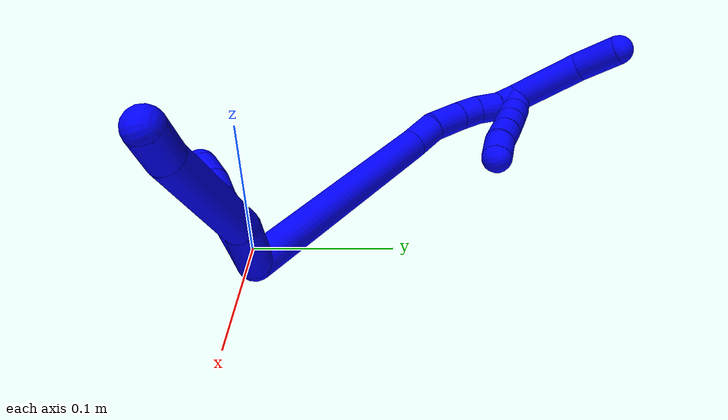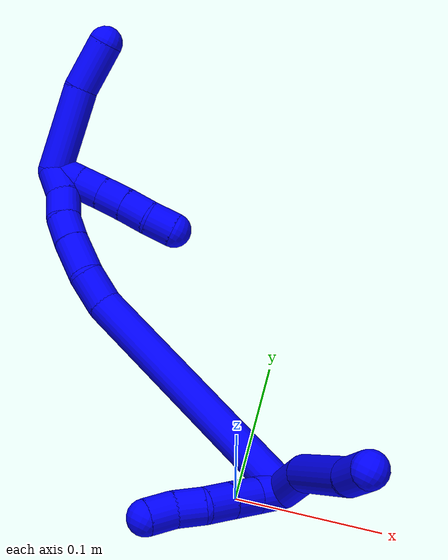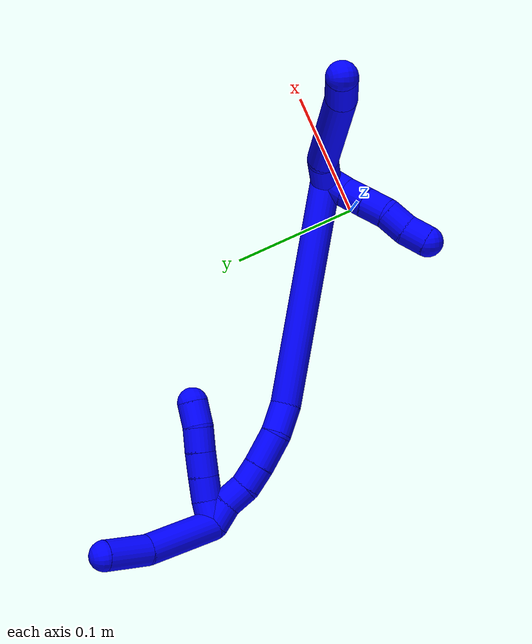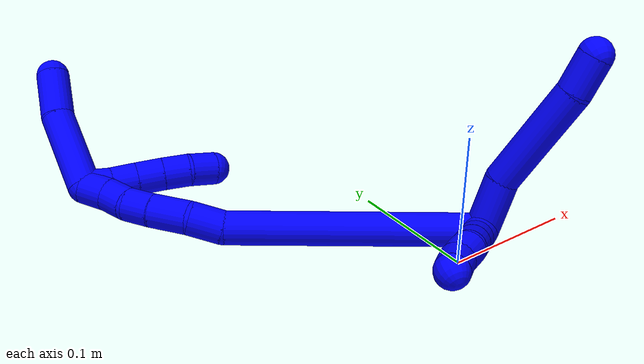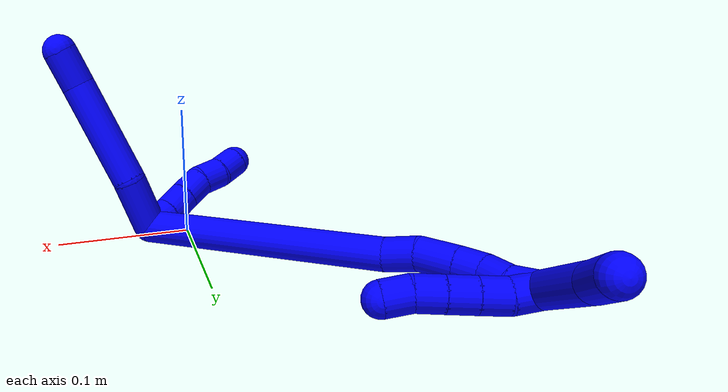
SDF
<sdf version="1.7">
 <world name="default">
  <model name="1">
   <static>0</static>
   <link name="1">
    <collision name="collision-cylinder-e_1_2_8">
     <pose>-0.007142 -0.017736 0.007792 1.15686 -0.353205 -0.231998</pose>
     <geometry><cylinder><radius>0.0125</radius><length>0.041294</length></cylinder></geometry>
     <surface>
      <friction><ode><mu>1.16</mu><mu2>1.16</mu2><slip1>0</slip1><slip2>0</slip2></ode></friction>
      <contact><ode><kp>1e+06</kp><kd>1</kd><max_vel>0</max_vel><min_depth>0.001</min_depth></ode></contact>
     </surface>
    </collision>
    <visual name="visual-cylinder-e_1_2_8">
     <pose>-0.007142 -0.017736 0.007792 1.15686 -0.353205 -0.231998</pose>
     <geometry><cylinder><radius>0.0125</radius><length>0.041294</length></cylinder></geometry>
     <material><ambient>0 0 1 1</ambient></material>
    </visual>
    <collision name="collision-cylinder-e_2_8_9">
     <pose>-0.024998 -0.073951 0.019929 1.45835 -0.269942 -0.241472</pose>
     <geometry><cylinder><radius>0.0125</radius><length>0.080357</length></cylinder></geometry>
     <surface>
      <friction><ode><mu>1.16</mu><mu2>1.16</mu2><slip1>0</slip1><slip2>0</slip2></ode></friction>
      <contact><ode><kp>1e+06</kp><kd>1</kd><max_vel>0</max_vel><min_depth>0.001</min_depth></ode></contact>
     </surface>
    </collision>
    <visual name="visual-cylinder-e_2_8_9">
     <pose>-0.024998 -0.073951 0.019929 1.45835 -0.269942 -0.241472</pose>
     <geometry><cylinder><radius>0.0125</radius><length>0.080357</length></cylinder></geometry>
     <material><ambient>0 0 1 1</ambient></material>
    </visual>
    <collision name="collision-cylinder-e_3_9_6">
     <pose>-0.039656 -0.125426 0.028333 1.26804 -0.281876 -0.207893</pose>
     <geometry><cylinder><radius>0.0125</radius><length>0.028349</length></cylinder></geometry>
     <surface>
      <friction><ode><mu>1.16</mu><mu2>1.16</mu2><slip1>0</slip1><slip2>0</slip2></ode></friction>
      <contact><ode><kp>1e+06</kp><kd>1</kd><max_vel>0</max_vel><min_depth>0.001</min_depth></ode></contact>
     </surface>
    </collision>
    <visual name="visual-cylinder-e_3_9_6">
     <pose>-0.039656 -0.125426 0.028333 1.26804 -0.281876 -0.207893</pose>
     <geometry><cylinder><radius>0.0125</radius><length>0.028349</length></cylinder></geometry>
     <material><ambient>0 0 1 1</ambient></material>
    </visual>
    <collision name="collision-cylinder-e_1_2_10">
     <pose>-0.008199 0.000612 -0.005693 -3.03449 -0.961151 2.93668</pose>
     <geometry><cylinder><radius>0.0125</radius><length>0.02</length></cylinder></geometry>
     <surface>
      <friction><ode><mu>1.16</mu><mu2>1.16</mu2><slip1>0</slip1><slip2>0</slip2></ode></friction>
      <contact><ode><kp>1e+06</kp><kd>1</kd><max_vel>0</max_vel><min_depth>0.001</min_depth></ode></contact>
     </surface>
    </collision>
    <visual name="visual-cylinder-e_1_2_10">
     <pose>-0.008199 0.000612 -0.005693 -3.03449 -0.961151 2.93668</pose>
     <geometry><cylinder><radius>0.0125</radius><length>0.02</length></cylinder></geometry>
     <material><ambient>0 0 1 1</ambient></material>
    </visual>
    <collision name="collision-cylinder-e_2_10_11">
     <pose>-0.024888 0.000453 -0.016612 2.9951 -1.01418 -2.87895</pose>
     <geometry><cylinder><radius>0.0125</radius><length>0.02</length></cylinder></geometry>
     <surface>
      <friction><ode><mu>1.16</mu><mu2>1.16</mu2><slip1>0</slip1><slip2>0</slip2></ode></friction>
      <contact><ode><kp>1e+06</kp><kd>1</kd><max_vel>0</max_vel><min_depth>0.001</min_depth></ode></contact>
     </surface>
    </collision>
    <visual name="visual-cylinder-e_2_10_11">
     <pose>-0.024888 0.000453 -0.016612 2.9951 -1.01418 -2.87895</pose>
     <geometry><cylinder><radius>0.0125</radius><length>0.02</length></cylinder></geometry>
     <material><ambient>0 0 1 1</ambient></material>
    </visual>
    <collision name="collision-cylinder-e_3_11_12">
     <pose>-0.04181 -0.000909 -0.027183 3.03141 -1.00313 -2.94113</pose>
     <geometry><cylinder><radius>0.0125</radius><length>0.02</length></cylinder></geometry>
     <surface>
      <friction><ode><mu>1.16</mu><mu2>1.16</mu2><slip1>0</slip1><slip2>0</slip2></ode></friction>
      <contact><ode><kp>1e+06</kp><kd>1</kd><max_vel>0</max_vel><min_depth>0.001</min_depth></ode></contact>
     </surface>
    </collision>
    <visual name="visual-cylinder-e_3_11_12">
     <pose>-0.04181 -0.000909 -0.027183 3.03141 -1.00313 -2.94113</pose>
     <geometry><cylinder><radius>0.0125</radius><length>0.02</length></cylinder></geometry>
     <material><ambient>0 0 1 1</ambient></material>
    </visual>
    <collision name="collision-cylinder-e_4_12_13">
     <pose>-0.058225 0.001129 -0.037945 -2.68974 -0.924552 2.2772</pose>
     <geometry><cylinder><radius>0.0125</radius><length>0.02</length></cylinder></geometry>
     <surface>
      <friction><ode><mu>1.16</mu><mu2>1.16</mu2><slip1>0</slip1><slip2>0</slip2></ode></friction>
      <contact><ode><kp>1e+06</kp><kd>1</kd><max_vel>0</max_vel><min_depth>0.001</min_depth></ode></contact>
     </surface>
    </collision>
    <visual name="visual-cylinder-e_4_12_13">
     <pose>-0.058225 0.001129 -0.037945 -2.68974 -0.924552 2.2772</pose>
     <geometry><cylinder><radius>0.0125</radius><length>0.02</length></cylinder></geometry>
     <material><ambient>0 0 1 1</ambient></material>
    </visual>
    <collision name="collision-cylinder-e_5_13_5">
     <pose>-0.073946 0.004356 -0.049669 -3.04704 -0.884741 2.94248</pose>
     <geometry><cylinder><radius>0.0125</radius><length>0.02</length></cylinder></geometry>
     <surface>
      <friction><ode><mu>1.16</mu><mu2>1.16</mu2><slip1>0</slip1><slip2>0</slip2></ode></friction>
      <contact><ode><kp>1e+06</kp><kd>1</kd><max_vel>0</max_vel><min_depth>0.001</min_depth></ode></contact>
     </surface>
    </collision>
    <visual name="visual-cylinder-e_5_13_5">
     <pose>-0.073946 0.004356 -0.049669 -3.04704 -0.884741 2.94248</pose>
     <geometry><cylinder><radius>0.0125</radius><length>0.02</length></cylinder></geometry>
     <material><ambient>0 0 1 1</ambient></material>
    </visual>
    <collision name="collision-cylinder-e_1_2_14">
     <pose>-0.058074 0.065795 0.029512 -1.14916 -0.67799 0.448896</pose>
     <geometry><cylinder><radius>0.0125</radius><length>0.185176</length></cylinder></geometry>
     <surface>
      <friction><ode><mu>1.16</mu><mu2>1.16</mu2><slip1>0</slip1><slip2>0</slip2></ode></friction>
      <contact><ode><kp>1e+06</kp><kd>1</kd><max_vel>0</max_vel><min_depth>0.001</min_depth></ode></contact>
     </surface>
    </collision>
    <visual name="visual-cylinder-e_1_2_14">
     <pose>-0.058074 0.065795 0.029512 -1.14916 -0.67799 0.448896</pose>
     <geometry><cylinder><radius>0.0125</radius><length>0.185176</length></cylinder></geometry>
     <material><ambient>0 0 1 1</ambient></material>
    </visual>
    <collision name="collision-cylinder-e_2_14_15">
     <pose>-0.124656 0.138334 0.065567 -0.800376 -0.735828 0.32327</pose>
     <geometry><cylinder><radius>0.0125</radius><length>0.025352</length></cylinder></geometry>
     <surface>
      <friction><ode><mu>1.16</mu><mu2>1.16</mu2><slip1>0</slip1><slip2>0</slip2></ode></friction>
      <contact><ode><kp>1e+06</kp><kd>1</kd><max_vel>0</max_vel><min_depth>0.001</min_depth></ode></contact>
     </surface>
    </collision>
    <visual name="visual-cylinder-e_2_14_15">
     <pose>-0.124656 0.138334 0.065567 -0.800376 -0.735828 0.32327</pose>
     <geometry><cylinder><radius>0.0125</radius><length>0.025352</length></cylinder></geometry>
     <material><ambient>0 0 1 1</ambient></material>
    </visual>
    <collision name="collision-cylinder-e_3_15_16">
     <pose>-0.139741 0.154878 0.080518 -0.861838 -0.471092 0.219784</pose>
     <geometry><cylinder><radius>0.0125</radius><length>0.028982</length></cylinder></geometry>
     <surface>
      <friction><ode><mu>1.16</mu><mu2>1.16</mu2><slip1>0</slip1><slip2>0</slip2></ode></friction>
      <contact><ode><kp>1e+06</kp><kd>1</kd><max_vel>0</max_vel><min_depth>0.001</min_depth></ode></contact>
     </surface>
    </collision>
    <visual name="visual-cylinder-e_3_15_16">
     <pose>-0.139741 0.154878 0.080518 -0.861838 -0.471092 0.219784</pose>
     <geometry><cylinder><radius>0.0125</radius><length>0.028982</length></cylinder></geometry>
     <material><ambient>0 0 1 1</ambient></material>
    </visual>
    <collision name="collision-cylinder-e_4_16_17">
     <pose>-0.150337 0.171282 0.095341 -0.79969 -0.411633 0.176004</pose>
     <geometry><cylinder><radius>0.0125</radius><length>0.020092</length></cylinder></geometry>
     <surface>
      <friction><ode><mu>1.16</mu><mu2>1.16</mu2><slip1>0</slip1><slip2>0</slip2></ode></friction>
      <contact><ode><kp>1e+06</kp><kd>1</kd><max_vel>0</max_vel><min_depth>0.001</min_depth></ode></contact>
     </surface>
    </collision>
    <visual name="visual-cylinder-e_4_16_17">
     <pose>-0.150337 0.171282 0.095341 -0.79969 -0.411633 0.176004</pose>
     <geometry><cylinder><radius>0.0125</radius><length>0.020092</length></cylinder></geometry>
     <material><ambient>0 0 1 1</ambient></material>
    </visual>
    <collision name="collision-cylinder-e_5_17_18">
     <pose>-0.156349 0.183578 0.109922 -0.608968 -0.197564 0.062268</pose>
     <geometry><cylinder><radius>0.0125</radius><length>0.020302</length></cylinder></geometry>
     <surface>
      <friction><ode><mu>1.16</mu><mu2>1.16</mu2><slip1>0</slip1><slip2>0</slip2></ode></friction>
      <contact><ode><kp>1e+06</kp><kd>1</kd><max_vel>0</max_vel><min_depth>0.001</min_depth></ode></contact>
     </surface>
    </collision>
    <visual name="visual-cylinder-e_5_17_18">
     <pose>-0.156349 0.183578 0.109922 -0.608968 -0.197564 0.062268</pose>
     <geometry><cylinder><radius>0.0125</radius><length>0.020302</length></cylinder></geometry>
     <material><ambient>0 0 1 1</ambient></material>
    </visual>
    <collision name="collision-cylinder-e_6_18_1">
     <pose>-0.163104 0.195195 0.124658 -0.733541 -0.493825 0.193054</pose>
     <geometry><cylinder><radius>0.0125</radius><length>0.020095</length></cylinder></geometry>
     <surface>
      <friction><ode><mu>1.16</mu><mu2>1.16</mu2><slip1>0</slip1><slip2>0</slip2></ode></friction>
      <contact><ode><kp>1e+06</kp><kd>1</kd><max_vel>0</max_vel><min_depth>0.001</min_depth></ode></contact>
     </surface>
    </collision>
    <visual name="visual-cylinder-e_6_18_1">
     <pose>-0.163104 0.195195 0.124658 -0.733541 -0.493825 0.193054</pose>
     <geometry><cylinder><radius>0.0125</radius><length>0.020095</length></cylinder></geometry>
     <material><ambient>0 0 1 1</ambient></material>
    </visual>
    <collision name="collision-cylinder-e_1_1_19">
     <pose>-0.15947 0.195695 0.13151 1.51921 0.99667 0.953953</pose>
     <geometry><cylinder><radius>0.0125</radius><length>0.02</length></cylinder></geometry>
     <surface>
      <friction><ode><mu>1.16</mu><mu2>1.16</mu2><slip1>0</slip1><slip2>0</slip2></ode></friction>
      <contact><ode><kp>1e+06</kp><kd>1</kd><max_vel>0</max_vel><min_depth>0.001</min_depth></ode></contact>
     </surface>
    </collision>
    <visual name="visual-cylinder-e_1_1_19">
     <pose>-0.15947 0.195695 0.13151 1.51921 0.99667 0.953953</pose>
     <geometry><cylinder><radius>0.0125</radius><length>0.02</length></cylinder></geometry>
     <material><ambient>0 0 1 1</ambient></material>
    </visual>
    <collision name="collision-cylinder-e_2_19_20">
     <pose>-0.143947 0.183256 0.131721 1.58068 0.79326 0.800327</pose>
     <geometry><cylinder><radius>0.0125</radius><length>0.02</length></cylinder></geometry>
     <surface>
      <friction><ode><mu>1.16</mu><mu2>1.16</mu2><slip1>0</slip1><slip2>0</slip2></ode></friction>
      <contact><ode><kp>1e+06</kp><kd>1</kd><max_vel>0</max_vel><min_depth>0.001</min_depth></ode></contact>
     </surface>
    </collision>
    <visual name="visual-cylinder-e_2_19_20">
     <pose>-0.143947 0.183256 0.131721 1.58068 0.79326 0.800327</pose>
     <geometry><cylinder><radius>0.0125</radius><length>0.02</length></cylinder></geometry>
     <material><ambient>0 0 1 1</ambient></material>
    </visual>
    <collision name="collision-cylinder-e_3_20_21">
     <pose>-0.129729 0.169195 0.131416 1.60427 0.788322 0.812343</pose>
     <geometry><cylinder><radius>0.0125</radius><length>0.02</length></cylinder></geometry>
     <surface>
      <friction><ode><mu>1.16</mu><mu2>1.16</mu2><slip1>0</slip1><slip2>0</slip2></ode></friction>
      <contact><ode><kp>1e+06</kp><kd>1</kd><max_vel>0</max_vel><min_depth>0.001</min_depth></ode></contact>
     </surface>
    </collision>
    <visual name="visual-cylinder-e_3_20_21">
     <pose>-0.129729 0.169195 0.131416 1.60427 0.788322 0.812343</pose>
     <geometry><cylinder><radius>0.0125</radius><length>0.02</length></cylinder></geometry>
     <material><ambient>0 0 1 1</ambient></material>
    </visual>
    <collision name="collision-cylinder-e_4_21_22">
     <pose>-0.115538 0.155135 0.13054 1.66183 0.789419 0.856208</pose>
     <geometry><cylinder><radius>0.0125</radius><length>0.02</length></cylinder></geometry>
     <surface>
      <friction><ode><mu>1.16</mu><mu2>1.16</mu2><slip1>0</slip1><slip2>0</slip2></ode></friction>
      <contact><ode><kp>1e+06</kp><kd>1</kd><max_vel>0</max_vel><min_depth>0.001</min_depth></ode></contact>
     </surface>
    </collision>
    <visual name="visual-cylinder-e_4_21_22">
     <pose>-0.115538 0.155135 0.13054 1.66183 0.789419 0.856208</pose>
     <geometry><cylinder><radius>0.0125</radius><length>0.02</length></cylinder></geometry>
     <material><ambient>0 0 1 1</ambient></material>
    </visual>
    <collision name="collision-cylinder-e_5_22_4">
     <pose>-0.09999 0.142771 0.129934 1.56439 1.00626 1.00085</pose>
     <geometry><cylinder><radius>0.0125</radius><length>0.02</length></cylinder></geometry>
     <surface>
      <friction><ode><mu>1.16</mu><mu2>1.16</mu2><slip1>0</slip1><slip2>0</slip2></ode></friction>
      <contact><ode><kp>1e+06</kp><kd>1</kd><max_vel>0</max_vel><min_depth>0.001</min_depth></ode></contact>
     </surface>
    </collision>
    <visual name="visual-cylinder-e_5_22_4">
     <pose>-0.09999 0.142771 0.129934 1.56439 1.00626 1.00085</pose>
     <geometry><cylinder><radius>0.0125</radius><length>0.02</length></cylinder></geometry>
     <material><ambient>0 0 1 1</ambient></material>
    </visual>
    <collision name="collision-cylinder-e_1_1_23">
     <pose>-0.174767 0.198906 0.161676 0.072528 -0.222299 -0.008098</pose>
     <geometry><cylinder><radius>0.0125</radius><length>0.062592</length></cylinder></geometry>
     <surface>
      <friction><ode><mu>1.16</mu><mu2>1.16</mu2><slip1>0</slip1><slip2>0</slip2></ode></friction>
      <contact><ode><kp>1e+06</kp><kd>1</kd><max_vel>0</max_vel><min_depth>0.001</min_depth></ode></contact>
     </surface>
    </collision>
    <visual name="visual-cylinder-e_1_1_23">
     <pose>-0.174767 0.198906 0.161676 0.072528 -0.222299 -0.008098</pose>
     <geometry><cylinder><radius>0.0125</radius><length>0.062592</length></cylinder></geometry>
     <material><ambient>0 0 1 1</ambient></material>
    </visual>
    <collision name="collision-cylinder-e_2_23_3">
     <pose>-0.18305 0.192602 0.21032 0.221211 -0.074047 -0.008227</pose>
     <geometry><cylinder><radius>0.0125</radius><length>0.037408</length></cylinder></geometry>
     <surface>
      <friction><ode><mu>1.16</mu><mu2>1.16</mu2><slip1>0</slip1><slip2>0</slip2></ode></friction>
      <contact><ode><kp>1e+06</kp><kd>1</kd><max_vel>0</max_vel><min_depth>0.001</min_depth></ode></contact>
     </surface>
    </collision>
    <visual name="visual-cylinder-e_2_23_3">
     <pose>-0.18305 0.192602 0.21032 0.221211 -0.074047 -0.008227</pose>
     <geometry><cylinder><radius>0.0125</radius><length>0.037408</length></cylinder></geometry>
     <material><ambient>0 0 1 1</ambient></material>
    </visual>
    <collision name="collision-sphere-3">
     <pose>-0.184434 0.188509 0.228518 0 -0 0</pose>
     <geometry><sphere><radius>0.0125</radius></sphere></geometry>
     <surface>
      <friction><ode><mu>1.16</mu><mu2>1.16</mu2><slip1>0</slip1><slip2>0</slip2></ode></friction>
      <contact><ode><kp>1e+06</kp><kd>1</kd><max_vel>0</max_vel><min_depth>0.001</min_depth></ode></contact>
     </surface>
    </collision>
    <visual name="visual-sphere-3">
     <pose>-0.184434 0.188509 0.228518 0 -0 0</pose>
     <geometry><sphere><radius>0.0125</radius></sphere></geometry>
     <material><ambient>0 0 1 1</ambient></material>
    </visual>
    <collision name="collision-sphere-23">
     <pose>-0.181667 0.196694 0.192121 0 -0 0</pose>
     <geometry><sphere><radius>0.0125</radius></sphere></geometry>
     <surface>
      <friction><ode><mu>1.16</mu><mu2>1.16</mu2><slip1>0</slip1><slip2>0</slip2></ode></friction>
      <contact><ode><kp>1e+06</kp><kd>1</kd><max_vel>0</max_vel><min_depth>0.001</min_depth></ode></contact>
     </surface>
    </collision>
    <visual name="visual-sphere-23">
     <pose>-0.181667 0.196694 0.192121 0 -0 0</pose>
     <geometry><sphere><radius>0.0125</radius></sphere></geometry>
     <material><ambient>0 0 1 1</ambient></material>
    </visual>
    <collision name="collision-sphere-4">
     <pose>-0.091542 0.137421 0.129968 0 -0 0</pose>
     <geometry><sphere><radius>0.0125</radius></sphere></geometry>
     <surface>
      <friction><ode><mu>1.16</mu><mu2>1.16</mu2><slip1>0</slip1><slip2>0</slip2></ode></friction>
      <contact><ode><kp>1e+06</kp><kd>1</kd><max_vel>0</max_vel><min_depth>0.001</min_depth></ode></contact>
     </surface>
    </collision>
    <visual name="visual-sphere-4">
     <pose>-0.091542 0.137421 0.129968 0 -0 0</pose>
     <geometry><sphere><radius>0.0125</radius></sphere></geometry>
     <material><ambient>0 0 1 1</ambient></material>
    </visual>
    <collision name="collision-sphere-22">
     <pose>-0.108438 0.148121 0.129899 0 -0 0</pose>
     <geometry><sphere><radius>0.0125</radius></sphere></geometry>
     <surface>
      <friction><ode><mu>1.16</mu><mu2>1.16</mu2><slip1>0</slip1><slip2>0</slip2></ode></friction>
      <contact><ode><kp>1e+06</kp><kd>1</kd><max_vel>0</max_vel><min_depth>0.001</min_depth></ode></contact>
     </surface>
    </collision>
    <visual name="visual-sphere-22">
     <pose>-0.108438 0.148121 0.129899 0 -0 0</pose>
     <geometry><sphere><radius>0.0125</radius></sphere></geometry>
     <material><ambient>0 0 1 1</ambient></material>
    </visual>
    <collision name="collision-sphere-21">
     <pose>-0.122637 0.162148 0.13118 0 -0 0</pose>
     <geometry><sphere><radius>0.0125</radius></sphere></geometry>
     <surface>
      <friction><ode><mu>1.16</mu><mu2>1.16</mu2><slip1>0</slip1><slip2>0</slip2></ode></friction>
      <contact><ode><kp>1e+06</kp><kd>1</kd><max_vel>0</max_vel><min_depth>0.001</min_depth></ode></contact>
     </surface>
    </collision>
    <visual name="visual-sphere-21">
     <pose>-0.122637 0.162148 0.13118 0 -0 0</pose>
     <geometry><sphere><radius>0.0125</radius></sphere></geometry>
     <material><ambient>0 0 1 1</ambient></material>
    </visual>
    <collision name="collision-sphere-20">
     <pose>-0.136821 0.176241 0.131652 0 -0 0</pose>
     <geometry><sphere><radius>0.0125</radius></sphere></geometry>
     <surface>
      <friction><ode><mu>1.16</mu><mu2>1.16</mu2><slip1>0</slip1><slip2>0</slip2></ode></friction>
      <contact><ode><kp>1e+06</kp><kd>1</kd><max_vel>0</max_vel><min_depth>0.001</min_depth></ode></contact>
     </surface>
    </collision>
    <visual name="visual-sphere-20">
     <pose>-0.136821 0.176241 0.131652 0 -0 0</pose>
     <geometry><sphere><radius>0.0125</radius></sphere></geometry>
     <material><ambient>0 0 1 1</ambient></material>
    </visual>
    <collision name="collision-sphere-11">
     <pose>-0.033378 -0.000318 -0.021839 0 -0 0</pose>
     <geometry><sphere><radius>0.0125</radius></sphere></geometry>
     <surface>
      <friction><ode><mu>1.16</mu><mu2>1.16</mu2><slip1>0</slip1><slip2>0</slip2></ode></friction>
      <contact><ode><kp>1e+06</kp><kd>1</kd><max_vel>0</max_vel><min_depth>0.001</min_depth></ode></contact>
     </surface>
    </collision>
    <visual name="visual-sphere-11">
     <pose>-0.033378 -0.000318 -0.021839 0 -0 0</pose>
     <geometry><sphere><radius>0.0125</radius></sphere></geometry>
     <material><ambient>0 0 1 1</ambient></material>
    </visual>
    <collision name="collision-sphere-10">
     <pose>-0.016397 0.001224 -0.011386 0 -0 0</pose>
     <geometry><sphere><radius>0.0125</radius></sphere></geometry>
     <surface>
      <friction><ode><mu>1.16</mu><mu2>1.16</mu2><slip1>0</slip1><slip2>0</slip2></ode></friction>
      <contact><ode><kp>1e+06</kp><kd>1</kd><max_vel>0</max_vel><min_depth>0.001</min_depth></ode></contact>
     </surface>
    </collision>
    <visual name="visual-sphere-10">
     <pose>-0.016397 0.001224 -0.011386 0 -0 0</pose>
     <geometry><sphere><radius>0.0125</radius></sphere></geometry>
     <material><ambient>0 0 1 1</ambient></material>
    </visual>
    <collision name="collision-sphere-6">
     <pose>-0.043599 -0.138422 0.032392 0 -0 0</pose>
     <geometry><sphere><radius>0.0125</radius></sphere></geometry>
     <surface>
      <friction><ode><mu>1.16</mu><mu2>1.16</mu2><slip1>0</slip1><slip2>0</slip2></ode></friction>
      <contact><ode><kp>1e+06</kp><kd>1</kd><max_vel>0</max_vel><min_depth>0.001</min_depth></ode></contact>
     </surface>
    </collision>
    <visual name="visual-sphere-6">
     <pose>-0.043599 -0.138422 0.032392 0 -0 0</pose>
     <geometry><sphere><radius>0.0125</radius></sphere></geometry>
     <material><ambient>0 0 1 1</ambient></material>
    </visual>
    <collision name="collision-sphere-9">
     <pose>-0.035713 -0.11243 0.024274 0 -0 0</pose>
     <geometry><sphere><radius>0.0125</radius></sphere></geometry>
     <surface>
      <friction><ode><mu>1.16</mu><mu2>1.16</mu2><slip1>0</slip1><slip2>0</slip2></ode></friction>
      <contact><ode><kp>1e+06</kp><kd>1</kd><max_vel>0</max_vel><min_depth>0.001</min_depth></ode></contact>
     </surface>
    </collision>
    <visual name="visual-sphere-9">
     <pose>-0.035713 -0.11243 0.024274 0 -0 0</pose>
     <geometry><sphere><radius>0.0125</radius></sphere></geometry>
     <material><ambient>0 0 1 1</ambient></material>
    </visual>
    <collision name="collision-sphere-2">
     <geometry><sphere><radius>0.0125</radius></sphere></geometry>
     <surface>
      <friction><ode><mu>1.16</mu><mu2>1.16</mu2><slip1>0</slip1><slip2>0</slip2></ode></friction>
      <contact><ode><kp>1e+06</kp><kd>1</kd><max_vel>0</max_vel><min_depth>0.001</min_depth></ode></contact>
     </surface>
    </collision>
    <visual name="visual-sphere-2">
     <geometry><sphere><radius>0.0125</radius></sphere></geometry>
     <material><ambient>0 0 1 1</ambient></material>
    </visual>
    <collision name="collision-sphere-19">
     <pose>-0.151074 0.190271 0.13179 0 -0 0</pose>
     <geometry><sphere><radius>0.0125</radius></sphere></geometry>
     <surface>
      <friction><ode><mu>1.16</mu><mu2>1.16</mu2><slip1>0</slip1><slip2>0</slip2></ode></friction>
      <contact><ode><kp>1e+06</kp><kd>1</kd><max_vel>0</max_vel><min_depth>0.001</min_depth></ode></contact>
     </surface>
    </collision>
    <visual name="visual-sphere-19">
     <pose>-0.151074 0.190271 0.13179 0 -0 0</pose>
     <geometry><sphere><radius>0.0125</radius></sphere></geometry>
     <material><ambient>0 0 1 1</ambient></material>
    </visual>
    <collision name="collision-sphere-8">
     <pose>-0.014284 -0.035472 0.015584 0 -0 0</pose>
     <geometry><sphere><radius>0.0125</radius></sphere></geometry>
     <surface>
      <friction><ode><mu>1.16</mu><mu2>1.16</mu2><slip1>0</slip1><slip2>0</slip2></ode></friction>
      <contact><ode><kp>1e+06</kp><kd>1</kd><max_vel>0</max_vel><min_depth>0.001</min_depth></ode></contact>
     </surface>
    </collision>
    <visual name="visual-sphere-8">
     <pose>-0.014284 -0.035472 0.015584 0 -0 0</pose>
     <geometry><sphere><radius>0.0125</radius></sphere></geometry>
     <material><ambient>0 0 1 1</ambient></material>
    </visual>
    <collision name="collision-sphere-12">
     <pose>-0.050241 -0.001501 -0.032527 0 -0 0</pose>
     <geometry><sphere><radius>0.0125</radius></sphere></geometry>
     <surface>
      <friction><ode><mu>1.16</mu><mu2>1.16</mu2><slip1>0</slip1><slip2>0</slip2></ode></friction>
      <contact><ode><kp>1e+06</kp><kd>1</kd><max_vel>0</max_vel><min_depth>0.001</min_depth></ode></contact>
     </surface>
    </collision>
    <visual name="visual-sphere-12">
     <pose>-0.050241 -0.001501 -0.032527 0 -0 0</pose>
     <geometry><sphere><radius>0.0125</radius></sphere></geometry>
     <material><ambient>0 0 1 1</ambient></material>
    </visual>
    <collision name="collision-sphere-13">
     <pose>-0.066208 0.003758 -0.043362 0 -0 0</pose>
     <geometry><sphere><radius>0.0125</radius></sphere></geometry>
     <surface>
      <friction><ode><mu>1.16</mu><mu2>1.16</mu2><slip1>0</slip1><slip2>0</slip2></ode></friction>
      <contact><ode><kp>1e+06</kp><kd>1</kd><max_vel>0</max_vel><min_depth>0.001</min_depth></ode></contact>
     </surface>
    </collision>
    <visual name="visual-sphere-13">
     <pose>-0.066208 0.003758 -0.043362 0 -0 0</pose>
     <geometry><sphere><radius>0.0125</radius></sphere></geometry>
     <material><ambient>0 0 1 1</ambient></material>
    </visual>
    <collision name="collision-sphere-5">
     <pose>-0.081683 0.004954 -0.055976 0 -0 0</pose>
     <geometry><sphere><radius>0.0125</radius></sphere></geometry>
     <surface>
      <friction><ode><mu>1.16</mu><mu2>1.16</mu2><slip1>0</slip1><slip2>0</slip2></ode></friction>
      <contact><ode><kp>1e+06</kp><kd>1</kd><max_vel>0</max_vel><min_depth>0.001</min_depth></ode></contact>
     </surface>
    </collision>
    <visual name="visual-sphere-5">
     <pose>-0.081683 0.004954 -0.055976 0 -0 0</pose>
     <geometry><sphere><radius>0.0125</radius></sphere></geometry>
     <material><ambient>0 0 1 1</ambient></material>
    </visual>
    <collision name="collision-sphere-14">
     <pose>-0.116148 0.131591 0.059023 0 -0 0</pose>
     <geometry><sphere><radius>0.0125</radius></sphere></geometry>
     <surface>
      <friction><ode><mu>1.16</mu><mu2>1.16</mu2><slip1>0</slip1><slip2>0</slip2></ode></friction>
      <contact><ode><kp>1e+06</kp><kd>1</kd><max_vel>0</max_vel><min_depth>0.001</min_depth></ode></contact>
     </surface>
    </collision>
    <visual name="visual-sphere-14">
     <pose>-0.116148 0.131591 0.059023 0 -0 0</pose>
     <geometry><sphere><radius>0.0125</radius></sphere></geometry>
     <material><ambient>0 0 1 1</ambient></material>
    </visual>
    <collision name="collision-sphere-15">
     <pose>-0.133164 0.145076 0.072111 0 -0 0</pose>
     <geometry><sphere><radius>0.0125</radius></sphere></geometry>
     <surface>
      <friction><ode><mu>1.16</mu><mu2>1.16</mu2><slip1>0</slip1><slip2>0</slip2></ode></friction>
      <contact><ode><kp>1e+06</kp><kd>1</kd><max_vel>0</max_vel><min_depth>0.001</min_depth></ode></contact>
     </surface>
    </collision>
    <visual name="visual-sphere-15">
     <pose>-0.133164 0.145076 0.072111 0 -0 0</pose>
     <geometry><sphere><radius>0.0125</radius></sphere></geometry>
     <material><ambient>0 0 1 1</ambient></material>
    </visual>
    <collision name="collision-sphere-16">
     <pose>-0.146318 0.164679 0.088925 0 -0 0</pose>
     <geometry><sphere><radius>0.0125</radius></sphere></geometry>
     <surface>
      <friction><ode><mu>1.16</mu><mu2>1.16</mu2><slip1>0</slip1><slip2>0</slip2></ode></friction>
      <contact><ode><kp>1e+06</kp><kd>1</kd><max_vel>0</max_vel><min_depth>0.001</min_depth></ode></contact>
     </surface>
    </collision>
    <visual name="visual-sphere-16">
     <pose>-0.146318 0.164679 0.088925 0 -0 0</pose>
     <geometry><sphere><radius>0.0125</radius></sphere></geometry>
     <material><ambient>0 0 1 1</ambient></material>
    </visual>
    <collision name="collision-sphere-17">
     <pose>-0.154357 0.177885 0.101758 0 -0 0</pose>
     <geometry><sphere><radius>0.0125</radius></sphere></geometry>
     <surface>
      <friction><ode><mu>1.16</mu><mu2>1.16</mu2><slip1>0</slip1><slip2>0</slip2></ode></friction>
      <contact><ode><kp>1e+06</kp><kd>1</kd><max_vel>0</max_vel><min_depth>0.001</min_depth></ode></contact>
     </surface>
    </collision>
    <visual name="visual-sphere-17">
     <pose>-0.154357 0.177885 0.101758 0 -0 0</pose>
     <geometry><sphere><radius>0.0125</radius></sphere></geometry>
     <material><ambient>0 0 1 1</ambient></material>
    </visual>
    <collision name="collision-sphere-18">
     <pose>-0.158342 0.189272 0.118087 0 -0 0</pose>
     <geometry><sphere><radius>0.0125</radius></sphere></geometry>
     <surface>
      <friction><ode><mu>1.16</mu><mu2>1.16</mu2><slip1>0</slip1><slip2>0</slip2></ode></friction>
      <contact><ode><kp>1e+06</kp><kd>1</kd><max_vel>0</max_vel><min_depth>0.001</min_depth></ode></contact>
     </surface>
    </collision>
    <visual name="visual-sphere-18">
     <pose>-0.158342 0.189272 0.118087 0 -0 0</pose>
     <geometry><sphere><radius>0.0125</radius></sphere></geometry>
     <material><ambient>0 0 1 1</ambient></material>
    </visual>
    <collision name="collision-sphere-1">
     <pose>-0.167867 0.201118 0.13123 0 -0 0</pose>
     <geometry><sphere><radius>0.0125</radius></sphere></geometry>
     <surface>
      <friction><ode><mu>1.16</mu><mu2>1.16</mu2><slip1>0</slip1><slip2>0</slip2></ode></friction>
      <contact><ode><kp>1e+06</kp><kd>1</kd><max_vel>0</max_vel><min_depth>0.001</min_depth></ode></contact>
     </surface>
    </collision>
    <visual name="visual-sphere-1">
     <pose>-0.167867 0.201118 0.13123 0 -0 0</pose>
     <geometry><sphere><radius>0.0125</radius></sphere></geometry>
     <material><ambient>0 0 1 1</ambient></material>
    </visual>
    <inertial>
     <pose>-0.087688 0.076971 0.062916 0 -0 0</pose>
     <mass>0.75</mass>
     <inertia>
      <ixx>0.000621</ixx>
      <ixy>0</ixy>
      <ixz>0</ixz>
      <iyy>0.000564</iyy>
      <iyz>0</iyz>
      <izz>5.2e-05</izz>
     </inertia>
    </inertial>
   </link>
   <pose>0.030279 0.00902 0.011429 -1.08703 0.681083 0.060421</pose>
  </model>
 </world>
</sdf>
